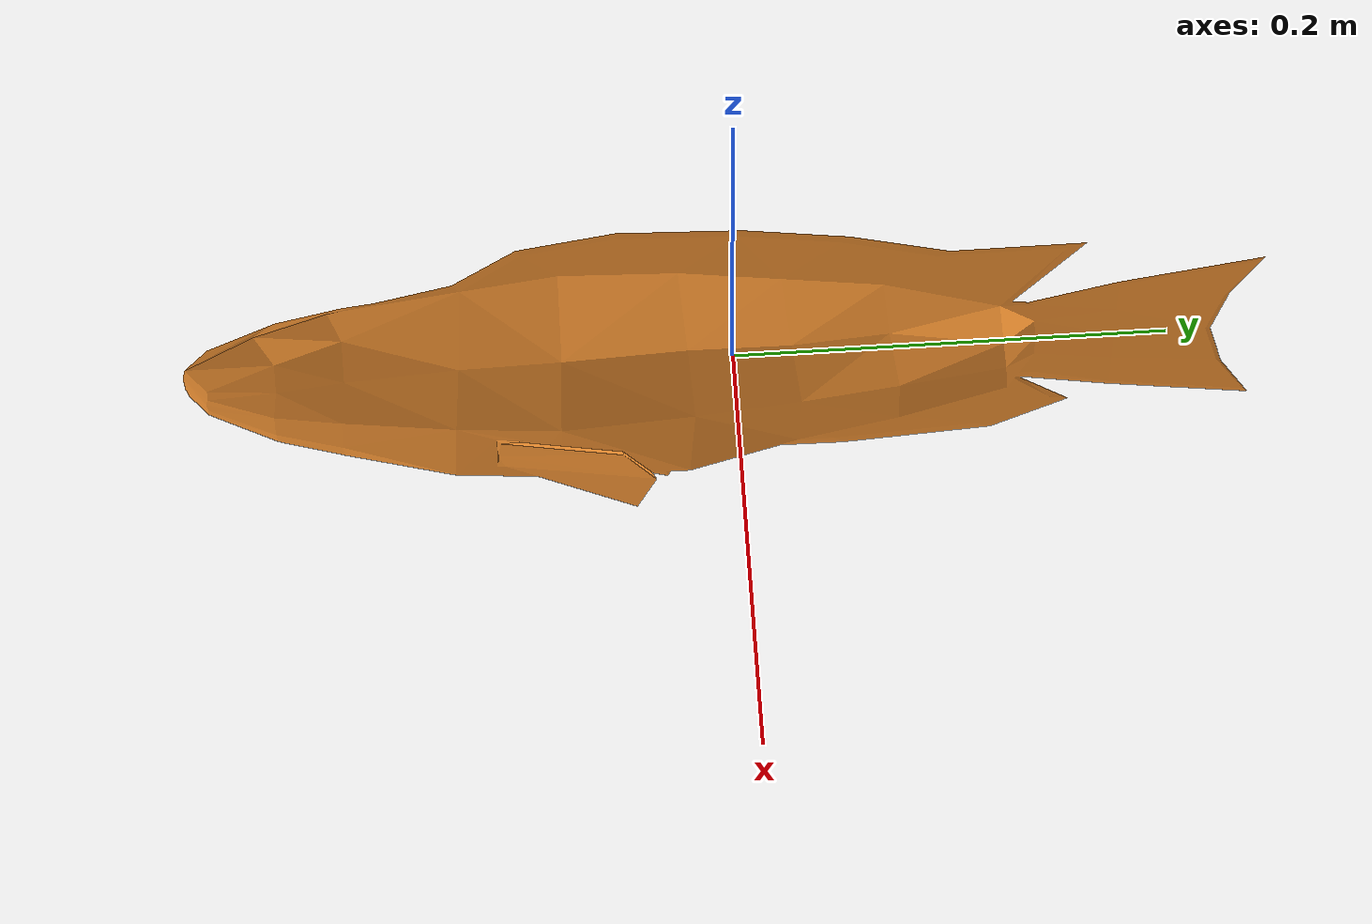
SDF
<?xml version="1.0" ?>
<sdf version="1.6">
  <model name="fish2">
    <link name="base_link">
      <collision name="collision">
        <geometry>
          <sphere>
            <radius>0.25</radius>
          </sphere>
        </geometry>
      </collision>

      <visual name="visual">
        <geometry>
          <mesh>
            <uri>meshes/fish.dae</uri>
            <scale>0.05 0.05 0.05</scale>
          </mesh>
        </geometry>

        <material>
          <ambient>1 0.7 0.2 1</ambient>
          <diffuse>1.0 0.6 0.2 1.0</diffuse>
          <specular>0.5 0.5 0.5 1.0</specular>
          <emissive>0.3 0.15 0.05 1.0</emissive>
        </material>
      </visual>

    </link>

    <plugin name="fish2_animate" filename="libanimated_fish2.so"/>
  </model>
</sdf>
